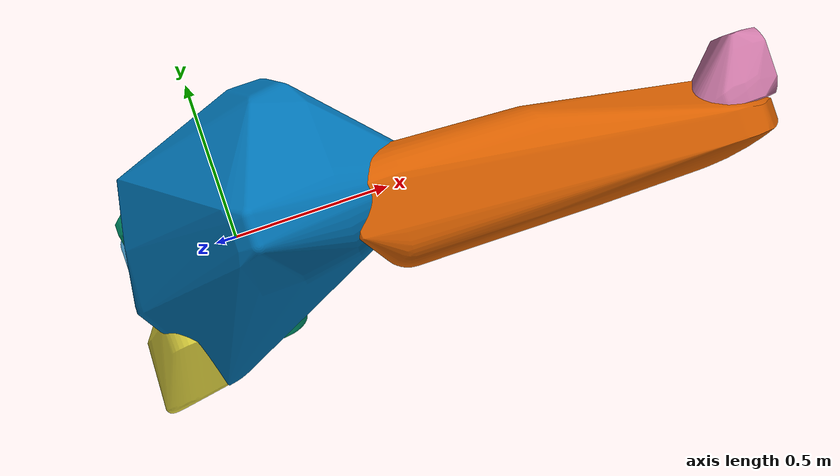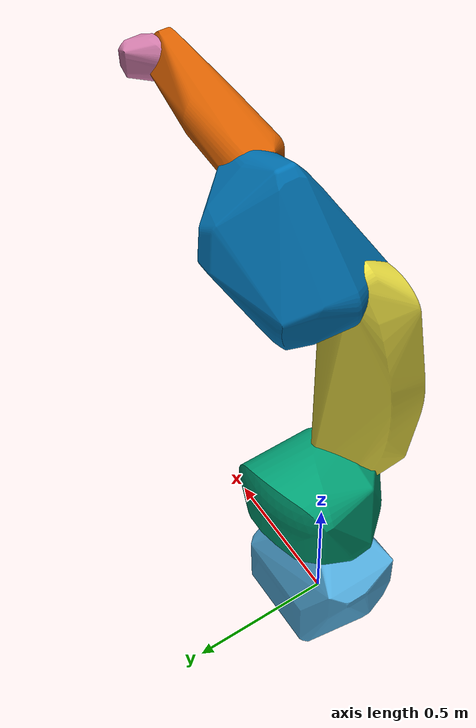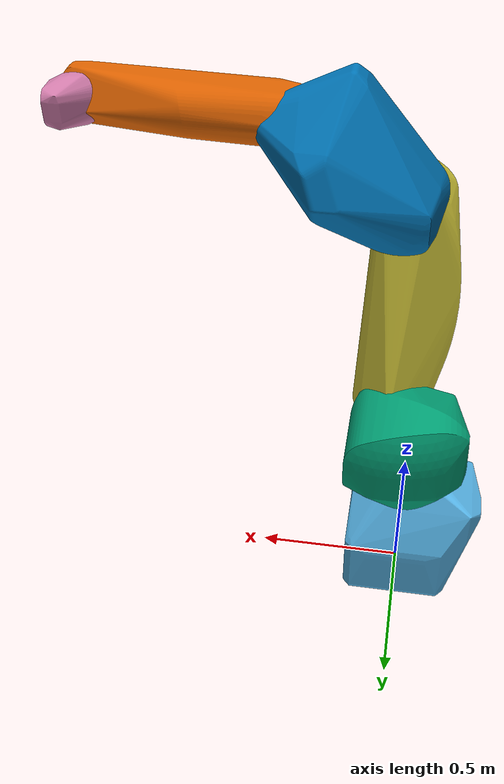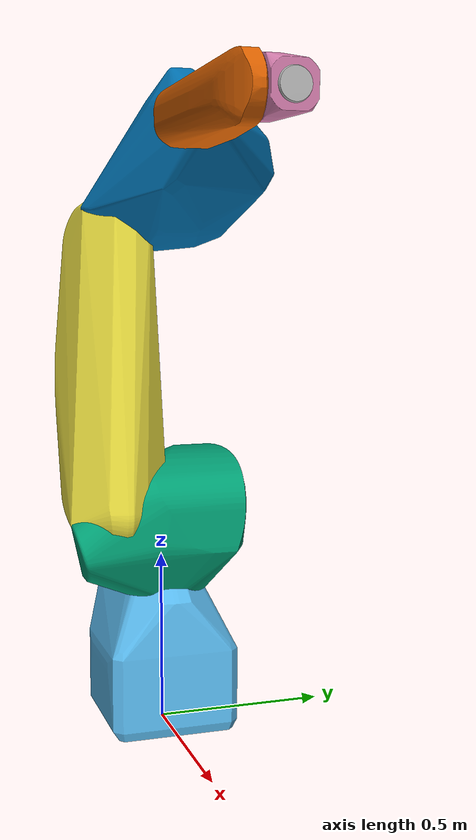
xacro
<?xml version="1.0"?>
<robot xmlns:xacro="http://www.ros.org/wiki/xacro" name="cr_35ib">
  <xacro:arg name="prefix" default=""/>
  <xacro:include filename="$(find fanuc_robot_descriptions)/urdf/cr_35ib_macro.xacro"/>
  <link name="world"/>
  <xacro:cr_35ib prefix="$(arg prefix)" parent="world">
    <origin xyz="0 0 0" rpy="0 0 0"/>
  </xacro:cr_35ib>
</robot>

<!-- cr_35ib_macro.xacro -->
<robot xmlns:xacro="http://www.ros.org/wiki/xacro">

  <!-- Fanuc CR-35iB - generated from RoboDK .robot -->
  <xacro:macro name="cr_35ib" params="prefix parent *origin">

    <material name="${prefix}cr_35ib_grey"><color rgba="0.85 0.85 0.85 1.0"/></material>

    <joint name="${prefix}base_joint" type="fixed">
      <xacro:insert_block name="origin"/>
      <parent link="${parent}"/>
      <child link="${prefix}base_link"/>
    </joint>

    <link name="${prefix}base_link">
      <visual>
        <origin xyz="0 0 0" rpy="0 0 0"/>
        <geometry>
          <mesh filename="package://fanuc_robot_descriptions/meshes/cr_35ib/visual/base_link.dae" scale="0.001 0.001 0.001"/>
        </geometry>
      </visual>
      <collision>
        <origin xyz="0 0 0" rpy="0 0 0"/>
        <geometry>
          <mesh filename="package://fanuc_robot_descriptions/meshes/cr_35ib/collision/base_link.stl" scale="0.001 0.001 0.001"/>
        </geometry>
      </collision>
    </link>

    <link name="${prefix}link_1">
      <visual>
        <origin xyz="0 0 0" rpy="0 0 0"/>
        <geometry>
          <mesh filename="package://fanuc_robot_descriptions/meshes/cr_35ib/visual/link_1.dae" scale="0.001 0.001 0.001"/>
        </geometry>
      </visual>
      <collision>
        <origin xyz="0 0 0" rpy="0 0 0"/>
        <geometry>
          <mesh filename="package://fanuc_robot_descriptions/meshes/cr_35ib/collision/link_1.stl" scale="0.001 0.001 0.001"/>
        </geometry>
      </collision>
    </link>

    <link name="${prefix}link_2">
      <visual>
        <origin xyz="0 0 0" rpy="0 0 0"/>
        <geometry>
          <mesh filename="package://fanuc_robot_descriptions/meshes/cr_35ib/visual/link_2.dae" scale="0.001 0.001 0.001"/>
        </geometry>
      </visual>
      <collision>
        <origin xyz="0 0 0" rpy="0 0 0"/>
        <geometry>
          <mesh filename="package://fanuc_robot_descriptions/meshes/cr_35ib/collision/link_2.stl" scale="0.001 0.001 0.001"/>
        </geometry>
      </collision>
    </link>

    <link name="${prefix}link_3">
      <visual>
        <origin xyz="0 0 0" rpy="0 0 0"/>
        <geometry>
          <mesh filename="package://fanuc_robot_descriptions/meshes/cr_35ib/visual/link_3.dae" scale="0.001 0.001 0.001"/>
        </geometry>
      </visual>
      <collision>
        <origin xyz="0 0 0" rpy="0 0 0"/>
        <geometry>
          <mesh filename="package://fanuc_robot_descriptions/meshes/cr_35ib/collision/link_3.stl" scale="0.001 0.001 0.001"/>
        </geometry>
      </collision>
    </link>

    <link name="${prefix}link_4">
      <visual>
        <origin xyz="0 0 0" rpy="0 0 0"/>
        <geometry>
          <mesh filename="package://fanuc_robot_descriptions/meshes/cr_35ib/visual/link_4.dae" scale="0.001 0.001 0.001"/>
        </geometry>
      </visual>
      <collision>
        <origin xyz="0 0 0" rpy="0 0 0"/>
        <geometry>
          <mesh filename="package://fanuc_robot_descriptions/meshes/cr_35ib/collision/link_4.stl" scale="0.001 0.001 0.001"/>
        </geometry>
      </collision>
    </link>

    <link name="${prefix}link_5">
      <visual>
        <origin xyz="0 0 0" rpy="0 0 0"/>
        <geometry>
          <mesh filename="package://fanuc_robot_descriptions/meshes/cr_35ib/visual/link_5.dae" scale="0.001 0.001 0.001"/>
        </geometry>
      </visual>
      <collision>
        <origin xyz="0 0 0" rpy="0 0 0"/>
        <geometry>
          <mesh filename="package://fanuc_robot_descriptions/meshes/cr_35ib/collision/link_5.stl" scale="0.001 0.001 0.001"/>
        </geometry>
      </collision>
    </link>

    <link name="${prefix}link_6">
      <visual>
        <origin xyz="0 0 0" rpy="0 0 0"/>
        <geometry>
          <mesh filename="package://fanuc_robot_descriptions/meshes/cr_35ib/visual/link_6.dae" scale="0.001 0.001 0.001"/>
        </geometry>
      </visual>
      <collision>
        <origin xyz="0 0 0" rpy="0 0 0"/>
        <geometry>
          <mesh filename="package://fanuc_robot_descriptions/meshes/cr_35ib/collision/link_6.stl" scale="0.001 0.001 0.001"/>
        </geometry>
      </collision>
    </link>

    <joint name="${prefix}joint_1" type="revolute">
      <parent link="${prefix}base_link"/>
      <child link="${prefix}link_1"/>
      <origin xyz="0 0 0.648" rpy="0 -0 0"/>
      <axis xyz="0 0 1"/>
      <limit lower="-3.2288591" upper="3.2288591" effort="100.0" velocity="3.1416"/>
    </joint>

    <joint name="${prefix}joint_2" type="revolute">
      <parent link="${prefix}link_1"/>
      <child link="${prefix}link_2"/>
      <origin xyz="0.075 0 0" rpy="-1.5707963 -1.5707963 0"/>
      <axis xyz="0 0 1"/>
      <limit lower="-1.134464" upper="3.4906585" effort="100.0" velocity="3.1416"/>
    </joint>

    <joint name="${prefix}joint_3" type="revolute">
      <parent link="${prefix}link_2"/>
      <child link="${prefix}link_3"/>
      <origin xyz="0.84 0 0" rpy="0 -0 0"/>
      <axis xyz="0 0 1"/>
      <limit lower="-3.4906585" upper="3.4906585" effort="100.0" velocity="3.1416"/>
    </joint>

    <joint name="${prefix}joint_4" type="revolute">
      <parent link="${prefix}link_3"/>
      <child link="${prefix}link_4"/>
      <origin xyz="0.215 0.89 5.4496783e-17" rpy="-1.5707963 -0 0"/>
      <axis xyz="0 0 1"/>
      <limit lower="-3.4906585" upper="3.4906585" effort="100.0" velocity="3.1416"/>
    </joint>

    <joint name="${prefix}joint_5" type="revolute">
      <parent link="${prefix}link_4"/>
      <child link="${prefix}link_5"/>
      <origin xyz="0 0 0" rpy="1.5707963 -0 0"/>
      <axis xyz="0 0 1"/>
      <limit lower="-2.443461" upper="2.443461" effort="100.0" velocity="3.1416"/>
    </joint>

    <joint name="${prefix}joint_6" type="revolute">
      <parent link="${prefix}link_5"/>
      <child link="${prefix}link_6"/>
      <origin xyz="0 0.09 5.5109106e-18" rpy="-1.5707963 -0 0"/>
      <axis xyz="0 0 1"/>
      <limit lower="-7.8539816" upper="7.8539816" effort="100.0" velocity="3.1416"/>
    </joint>

    <link name="${prefix}flange"/>
    <joint name="${prefix}link_6-flange" type="fixed">
      <parent link="${prefix}link_6"/>
      <child link="${prefix}flange"/>
      <origin xyz="0 0 0" rpy="0 0 0"/>
    </joint>
    <link name="${prefix}tool0"/>
    <joint name="${prefix}flange-tool0" type="fixed">
      <parent link="${prefix}flange"/>
      <child link="${prefix}tool0"/>
      <origin xyz="0 0 0" rpy="0 0 0"/>
    </joint>

  </xacro:macro>
</robot>
